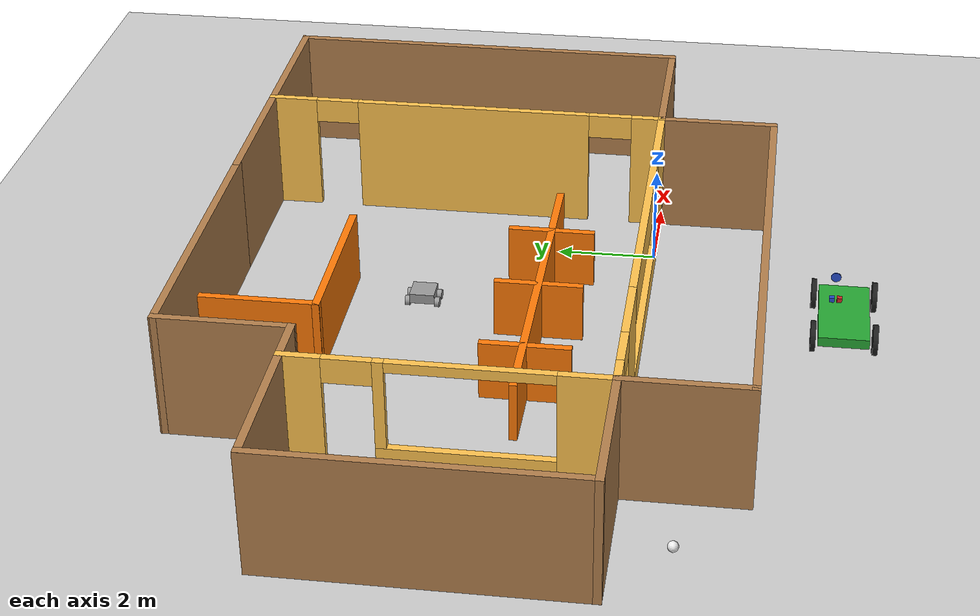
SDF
<sdf version="1.6">
 <world name="default">
  <plugin name="hello" filename="libhello.so"/>
  <model name="ground_plane">
   <static>1</static>
   <link name="link">
    <collision name="collision">
     <geometry><plane><normal>0 0 1</normal><size>100 100</size></plane></geometry>
     <surface><friction><ode><mu>100</mu><mu2>50</mu2></ode></friction></surface>
    </collision>
    <visual name="visual">
     <cast_shadows>0</cast_shadows>
     <geometry><plane><normal>0 0 1</normal><size>100 100</size></plane></geometry>
     <material>
      <script><uri>file://media/materials/scripts/gazebo.material</uri><name>Gazebo/Grey</name></script>
     </material>
    </visual>
   </link>
  </model>
  <gravity>0 0 -9.8</gravity>
  <magnetic_field>6e-06 2.3e-05 -4.2e-05</magnetic_field>
  <atmosphere type="adiabatic"/>
  <physics name="default_physics" default="0" type="ode">
   <max_step_size>0.001</max_step_size>
   <real_time_factor>1</real_time_factor>
   <real_time_update_rate>1000</real_time_update_rate>
  </physics>
  <scene><ambient>0.4 0.4 0.4 1</ambient><background>0.7 0.7 0.7 1</background><shadows>1</shadows></scene>
  <spherical_coordinates>
   <surface_model>EARTH_WGS84</surface_model>
   <latitude_deg>0</latitude_deg>
   <longitude_deg>0</longitude_deg>
   <elevation>0</elevation>
   <heading_deg>0</heading_deg>
  </spherical_coordinates>
  <model name="office_room">
   <pose>-3.26121 3.03746 0 0 -0 0</pose>
   <link name="Wall_1">
    <collision name="Wall_1_Collision">
     <geometry><box><size>6 0.15 2.5</size></box></geometry>
     <pose>0 0 1.25 0 -0 0</pose>
    </collision>
    <visual name="Wall_1_Visual">
     <pose>0 0 1.25 0 -0 0</pose>
     <geometry><box><size>6 0.15 2.5</size></box></geometry>
     <material>
      <script><uri>file://media/materials/scripts/gazebo.material</uri><name>Gazebo/Wood</name></script>
      <ambient>0.435294 0.796078 0.67451 1</ambient>
     </material>
     <meta><layer>0</layer></meta>
    </visual>
    <pose>-7.89989 -0.075231 0 0 0 -1.57083</pose>
   </link>
   <link name="Wall_18">
    <collision name="Wall_18_Collision">
     <geometry><box><size>6 0.15 2.5</size></box></geometry>
     <pose>0 0 1.25 0 -0 0</pose>
    </collision>
    <visual name="Wall_18_Visual">
     <pose>0 0 1.25 0 -0 0</pose>
     <geometry><box><size>6 0.15 2.5</size></box></geometry>
     <material>
      <script><uri>file://media/materials/scripts/gazebo.material</uri><name>Gazebo/Wood</name></script>
      <ambient>0.435294 0.796078 0.67451 1</ambient>
     </material>
     <meta><layer>0</layer></meta>
    </visual>
    <pose>-1.225 5.35 0 0 -0 3.14159</pose>
   </link>
   <link name="Wall_2">
    <collision name="Wall_2_Collision">
     <geometry><box><size>3 0.15 2.5</size></box></geometry>
     <pose>0 0 1.25 0 -0 0</pose>
    </collision>
    <visual name="Wall_2_Visual">
     <pose>0 0 1.25 0 -0 0</pose>
     <geometry><box><size>3 0.15 2.5</size></box></geometry>
     <material>
      <script><uri>file://media/materials/scripts/gazebo.material</uri><name>Gazebo/Wood</name></script>
      <ambient>0.435294 0.796078 0.67451 1</ambient>
     </material>
     <meta><layer>0</layer></meta>
    </visual>
    <pose>-6.475 -3 0 0 -0 0</pose>
   </link>
   <link name="Wall_23">
    <collision name="Wall_23_Collision">
     <geometry><box><size>3.9 0.15 2.5</size></box></geometry>
     <pose>0 0 1.25 0 -0 0</pose>
    </collision>
    <visual name="Wall_23_Visual">
     <pose>0 0 1.25 0 -0 0</pose>
     <geometry><box><size>3.9 0.15 2.5</size></box></geometry>
     <material>
      <script><uri>file://media/materials/scripts/gazebo.material</uri><name>Gazebo/Wood</name></script>
      <ambient>0.435294 0.796078 0.67451 1</ambient>
     </material>
     <meta><layer>0</layer></meta>
    </visual>
    <pose>-6.02478 2.84954 0 0 -0 0</pose>
   </link>
   <link name="Wall_24">
    <collision name="Wall_24_Collision">
     <geometry><box><size>2.65046 0.15 2.5</size></box></geometry>
     <pose>0 0 1.25 0 -0 0</pose>
    </collision>
    <visual name="Wall_24_Visual">
     <pose>0 0 1.25 0 -0 0</pose>
     <geometry><box><size>2.65046 0.15 2.5</size></box></geometry>
     <material>
      <script><uri>file://media/materials/scripts/gazebo.material</uri><name>Gazebo/Wood</name></script>
      <ambient>0.435294 0.796078 0.67451 1</ambient>
     </material>
     <meta><layer>0</layer></meta>
    </visual>
    <pose>-4.14989 4.09977 0 0 -0 1.57088</pose>
   </link>
   <link name="Wall_26">
    <pose>-5.05 -0.075003 0 0 -0 1.5708</pose>
    <visual name="Wall_26_Visual_0">
     <pose>-2.45423 0 1.25 0 -0 0</pose>
     <geometry><box><size>1.09154 0.15 2.5</size></box></geometry>
     <material>
      <script><uri>file://media/materials/scripts/gazebo.material</uri><name>Gazebo/Grey</name></script>
      <ambient>1 0.764706 0.305882 1</ambient>
     </material>
     <meta><layer>0</layer></meta>
    </visual>
    <collision name="Wall_26_Collision_0">
     <geometry><box><size>1.09154 0.15 2.5</size></box></geometry>
     <pose>-2.45423 0 1.25 0 -0 0</pose>
    </collision>
    <visual name="Wall_26_Visual_1">
     <pose>2.59632 0 1.25 0 -0 0</pose>
     <geometry><box><size>0.807355 0.15 2.5</size></box></geometry>
     <material>
      <script><uri>file://media/materials/scripts/gazebo.material</uri><name>Gazebo/Grey</name></script>
      <ambient>1 0.764706 0.305882 1</ambient>
     </material>
     <meta><layer>0</layer></meta>
    </visual>
    <collision name="Wall_26_Collision_1">
     <geometry><box><size>0.807355 0.15 2.5</size></box></geometry>
     <pose>2.59632 0 1.25 0 -0 0</pose>
    </collision>
    <visual name="Wall_26_Visual_2">
     <pose>-0.307906 0 0.35 0 -0 0</pose>
     <geometry><box><size>3.2011 0.15 0.7</size></box></geometry>
     <material>
      <script><uri>file://media/materials/scripts/gazebo.material</uri><name>Gazebo/Grey</name></script>
      <ambient>1 0.764706 0.305882 1</ambient>
     </material>
     <meta><layer>0</layer></meta>
    </visual>
    <collision name="Wall_26_Collision_2">
     <geometry><box><size>3.2011 0.15 0.7</size></box></geometry>
     <pose>-0.307906 0 0.35 0 -0 0</pose>
    </collision>
    <visual name="Wall_26_Visual_3">
     <pose>1.19209 0 1.6 0 -0 0</pose>
     <geometry><box><size>0.201101 0.15 1.8</size></box></geometry>
     <material>
      <script><uri>file://media/materials/scripts/gazebo.material</uri><name>Gazebo/Grey</name></script>
      <ambient>1 0.764706 0.305882 1</ambient>
     </material>
     <meta><layer>0</layer></meta>
    </visual>
    <collision name="Wall_26_Collision_3">
     <geometry><box><size>0.201101 0.15 1.8</size></box></geometry>
     <pose>1.19209 0 1.6 0 -0 0</pose>
    </collision>
    <visual name="Wall_26_Visual_4">
     <pose>1.74264 0 2.25 0 -0 0</pose>
     <geometry><box><size>0.9 0.15 0.5</size></box></geometry>
     <material>
      <script><uri>file://media/materials/scripts/gazebo.material</uri><name>Gazebo/Grey</name></script>
      <ambient>1 0.764706 0.305882 1</ambient>
     </material>
     <meta><layer>0</layer></meta>
    </visual>
    <collision name="Wall_26_Collision_4">
     <geometry><box><size>0.9 0.15 0.5</size></box></geometry>
     <pose>1.74264 0 2.25 0 -0 0</pose>
    </collision>
    <visual name="Wall_26_Visual_5">
     <pose>-0.408456 0 2.4 0 -0 0</pose>
     <geometry><box><size>3 0.15 0.2</size></box></geometry>
     <material>
      <script><uri>file://media/materials/scripts/gazebo.material</uri><name>Gazebo/Grey</name></script>
      <ambient>1 0.764706 0.305882 1</ambient>
     </material>
     <meta><layer>0</layer></meta>
    </visual>
    <collision name="Wall_26_Collision_5">
     <geometry><box><size>3 0.15 0.2</size></box></geometry>
     <pose>-0.408456 0 2.4 0 -0 0</pose>
    </collision>
   </link>
   <link name="Wall_28">
    <pose>-0.124999 -3 0 0 -0 0</pose>
    <visual name="Wall_28_Visual_0">
     <pose>-4.6854 0 1.25 0 -0 0</pose>
     <geometry><box><size>0.629202 0.15 2.5</size></box></geometry>
     <material>
      <script><uri>file://media/materials/scripts/gazebo.material</uri><name>Gazebo/Grey</name></script>
      <ambient>1 0.764706 0.305882 1</ambient>
     </material>
     <meta><layer>0</layer></meta>
    </visual>
    <collision name="Wall_28_Collision_0">
     <geometry><box><size>0.629202 0.15 2.5</size></box></geometry>
     <pose>-4.6854 0 1.25 0 -0 0</pose>
    </collision>
    <visual name="Wall_28_Visual_1">
     <pose>-2.70707 0 1.25 0 -0 0</pose>
     <geometry><box><size>1.52746 0.15 2.5</size></box></geometry>
     <material>
      <script><uri>file://media/materials/scripts/gazebo.material</uri><name>Gazebo/Grey</name></script>
      <ambient>1 0.764706 0.305882 1</ambient>
     </material>
     <meta><layer>0</layer></meta>
    </visual>
    <collision name="Wall_28_Collision_1">
     <geometry><box><size>1.52746 0.15 2.5</size></box></geometry>
     <pose>-2.70707 0 1.25 0 -0 0</pose>
    </collision>
    <visual name="Wall_28_Visual_2">
     <pose>1.52833 0 0.25 0 -0 0</pose>
     <geometry><box><size>6.94334 0.15 0.5</size></box></geometry>
     <material>
      <script><uri>file://media/materials/scripts/gazebo.material</uri><name>Gazebo/Grey</name></script>
      <ambient>1 0.764706 0.305882 1</ambient>
     </material>
     <meta><layer>0</layer></meta>
    </visual>
    <collision name="Wall_28_Collision_2">
     <geometry><box><size>6.94334 0.15 0.5</size></box></geometry>
     <pose>1.52833 0 0.25 0 -0 0</pose>
    </collision>
    <visual name="Wall_28_Visual_3">
     <pose>4.02833 0 1.5 0 -0 0</pose>
     <geometry><box><size>1.94334 0.15 2</size></box></geometry>
     <material>
      <script><uri>file://media/materials/scripts/gazebo.material</uri><name>Gazebo/Grey</name></script>
      <ambient>1 0.764706 0.305882 1</ambient>
     </material>
     <meta><layer>0</layer></meta>
    </visual>
    <collision name="Wall_28_Collision_3">
     <geometry><box><size>1.94334 0.15 2</size></box></geometry>
     <pose>4.02833 0 1.5 0 -0 0</pose>
    </collision>
    <visual name="Wall_28_Visual_4">
     <pose>0.556659 0 2.1 0 -0 0</pose>
     <geometry><box><size>5 0.15 0.8</size></box></geometry>
     <material>
      <script><uri>file://media/materials/scripts/gazebo.material</uri><name>Gazebo/Grey</name></script>
      <ambient>1 0.764706 0.305882 1</ambient>
     </material>
     <meta><layer>0</layer></meta>
    </visual>
    <collision name="Wall_28_Collision_4">
     <geometry><box><size>5 0.15 0.8</size></box></geometry>
     <pose>0.556659 0 2.1 0 -0 0</pose>
    </collision>
    <visual name="Wall_28_Visual_5">
     <pose>-3.9208 0 2.25 0 -0 0</pose>
     <geometry><box><size>0.9 0.15 0.5</size></box></geometry>
     <material>
      <script><uri>file://media/materials/scripts/gazebo.material</uri><name>Gazebo/Grey</name></script>
      <ambient>1 0.764706 0.305882 1</ambient>
     </material>
     <meta><layer>0</layer></meta>
    </visual>
    <collision name="Wall_28_Collision_5">
     <geometry><box><size>0.9 0.15 0.5</size></box></geometry>
     <pose>-3.9208 0 2.25 0 -0 0</pose>
    </collision>
   </link>
   <link name="Wall_3">
    <collision name="Wall_3_Collision">
     <geometry><box><size>2.5 0.15 2.5</size></box></geometry>
     <pose>0 0 1.25 0 -0 0</pose>
    </collision>
    <visual name="Wall_3_Visual">
     <pose>0 0 1.25 0 -0 0</pose>
     <geometry><box><size>2.5 0.15 2.5</size></box></geometry>
     <material>
      <script><uri>file://media/materials/scripts/gazebo.material</uri><name>Gazebo/Wood</name></script>
      <ambient>0.435294 0.796078 0.67451 1</ambient>
     </material>
     <meta><layer>0</layer></meta>
    </visual>
    <pose>-5.05 -4.175 0 0 0 -1.5708</pose>
   </link>
   <link name="Wall_30">
    <collision name="Wall_30_Collision">
     <geometry><box><size>7.25 0.15 1.2</size></box></geometry>
     <pose>0 0 0.6 0 -0 0</pose>
    </collision>
    <visual name="Wall_30_Visual">
     <pose>0 0 0.6 0 -0 0</pose>
     <geometry><box><size>7.25 0.15 1.2</size></box></geometry>
     <material>
      <script><uri>file://media/materials/scripts/gazebo.material</uri><name>Gazebo/Grey</name></script>
      <ambient>0.996078 0.47451 0.0196078 1</ambient>
     </material>
     <meta><layer>0</layer></meta>
    </visual>
    <pose>0.011215 -1.00846 0 0 -0 0</pose>
   </link>
   <link name="Wall_32">
    <collision name="Wall_32_Collision">
     <geometry><box><size>1.75 0.15 1.2</size></box></geometry>
     <pose>0 0 0.6 0 -0 0</pose>
    </collision>
    <visual name="Wall_32_Visual">
     <pose>0 0 0.6 0 -0 0</pose>
     <geometry><box><size>1.75 0.15 1.2</size></box></geometry>
     <material>
      <script><uri>file://media/materials/scripts/gazebo.material</uri><name>Gazebo/Grey</name></script>
      <ambient>0.996078 0.47451 0.0196078 1</ambient>
     </material>
     <meta><layer>0</layer></meta>
    </visual>
    <pose>-2.24478 -1.04746 0 0 -0 1.5708</pose>
   </link>
   <link name="Wall_34">
    <collision name="Wall_34_Collision">
     <geometry><box><size>1.75 0.15 1.2</size></box></geometry>
     <pose>0 0 0.6 0 -0 0</pose>
    </collision>
    <visual name="Wall_34_Visual">
     <pose>0 0 0.6 0 -0 0</pose>
     <geometry><box><size>1.75 0.15 1.2</size></box></geometry>
     <material>
      <script><uri>file://media/materials/scripts/gazebo.material</uri><name>Gazebo/Grey</name></script>
      <ambient>0.996078 0.47451 0.0196078 1</ambient>
     </material>
     <meta><layer>0</layer></meta>
    </visual>
    <pose>-0.022785 -1.01246 0 0 -0 1.5708</pose>
   </link>
   <link name="Wall_36">
    <collision name="Wall_36_Collision">
     <geometry><box><size>1.75 0.15 1.2</size></box></geometry>
     <pose>0 0 0.6 0 -0 0</pose>
    </collision>
    <visual name="Wall_36_Visual">
     <pose>0 0 0.6 0 -0 0</pose>
     <geometry><box><size>1.75 0.15 1.2</size></box></geometry>
     <material>
      <script><uri>file://media/materials/scripts/gazebo.material</uri><name>Gazebo/Grey</name></script>
      <ambient>0.996078 0.47451 0.0196078 1</ambient>
     </material>
     <meta><layer>0</layer></meta>
    </visual>
    <pose>2.07621 -1.01246 0 0 -0 1.5708</pose>
   </link>
   <link name="Wall_4">
    <collision name="Wall_4_Collision">
     <geometry><box><size>10 0.15 2.5</size></box></geometry>
     <pose>0 0 1.25 0 -0 0</pose>
    </collision>
    <visual name="Wall_4_Visual">
     <pose>0 0 1.25 0 -0 0</pose>
     <geometry><box><size>10 0.15 2.5</size></box></geometry>
     <material>
      <script><uri>file://media/materials/scripts/gazebo.material</uri><name>Gazebo/Wood</name></script>
      <ambient>0.435294 0.796078 0.67451 1</ambient>
     </material>
     <meta><layer>0</layer></meta>
    </visual>
    <pose>-0.124999 -5.35 0 0 -0 0</pose>
   </link>
   <link name="Wall_43">
    <pose>4.8 1.175 0 0 -0 1.5708</pose>
    <visual name="Wall_43_Visual_0">
     <pose>-3.89641 0 1.25 0 -0 0</pose>
     <geometry><box><size>0.707182 0.15 2.5</size></box></geometry>
     <material>
      <script><uri>file://media/materials/scripts/gazebo.material</uri><name>Gazebo/Grey</name></script>
      <ambient>1 0.764706 0.305882 1</ambient>
     </material>
     <meta><layer>0</layer></meta>
    </visual>
    <collision name="Wall_43_Collision_0">
     <geometry><box><size>0.707182 0.15 2.5</size></box></geometry>
     <pose>-3.89641 0 1.25 0 -0 0</pose>
    </collision>
    <visual name="Wall_43_Visual_1">
     <pose>-0.163233 0 1.25 0 -0 0</pose>
     <geometry><box><size>4.95917 0.15 2.5</size></box></geometry>
     <material>
      <script><uri>file://media/materials/scripts/gazebo.material</uri><name>Gazebo/Grey</name></script>
      <ambient>1 0.764706 0.305882 1</ambient>
     </material>
     <meta><layer>0</layer></meta>
    </visual>
    <collision name="Wall_43_Collision_1">
     <geometry><box><size>4.95917 0.15 2.5</size></box></geometry>
     <pose>-0.163233 0 1.25 0 -0 0</pose>
    </collision>
    <visual name="Wall_43_Visual_2">
     <pose>3.73318 0 1.25 0 -0 0</pose>
     <geometry><box><size>1.03365 0.15 2.5</size></box></geometry>
     <material>
      <script><uri>file://media/materials/scripts/gazebo.material</uri><name>Gazebo/Grey</name></script>
      <ambient>1 0.764706 0.305882 1</ambient>
     </material>
     <meta><layer>0</layer></meta>
    </visual>
    <collision name="Wall_43_Collision_2">
     <geometry><box><size>1.03365 0.15 2.5</size></box></geometry>
     <pose>3.73318 0 1.25 0 -0 0</pose>
    </collision>
    <visual name="Wall_43_Visual_3">
     <pose>-3.09282 0 2.25 0 -0 0</pose>
     <geometry><box><size>0.9 0.15 0.5</size></box></geometry>
     <material>
      <script><uri>file://media/materials/scripts/gazebo.material</uri><name>Gazebo/Grey</name></script>
      <ambient>1 0.764706 0.305882 1</ambient>
     </material>
     <meta><layer>0</layer></meta>
    </visual>
    <collision name="Wall_43_Collision_3">
     <geometry><box><size>0.9 0.15 0.5</size></box></geometry>
     <pose>-3.09282 0 2.25 0 -0 0</pose>
    </collision>
    <visual name="Wall_43_Visual_4">
     <pose>2.76635 0 2.25 0 -0 0</pose>
     <geometry><box><size>0.9 0.15 0.5</size></box></geometry>
     <material>
      <script><uri>file://media/materials/scripts/gazebo.material</uri><name>Gazebo/Grey</name></script>
      <ambient>1 0.764706 0.305882 1</ambient>
     </material>
     <meta><layer>0</layer></meta>
    </visual>
    <collision name="Wall_43_Collision_4">
     <geometry><box><size>0.9 0.15 0.5</size></box></geometry>
     <pose>2.76635 0 2.25 0 -0 0</pose>
    </collision>
   </link>
   <link name="Wall_46">
    <collision name="Wall_46_Collision">
     <geometry><box><size>8.5 0.15 2.5</size></box></geometry>
     <pose>0 0 1.25 0 -0 0</pose>
    </collision>
    <visual name="Wall_46_Visual">
     <pose>0 0 1.25 0 -0 0</pose>
     <geometry><box><size>8.5 0.15 2.5</size></box></geometry>
     <material>
      <script><uri>file://media/materials/scripts/gazebo.material</uri><name>Gazebo/Wood</name></script>
      <ambient>0.435294 0.796078 0.67451 1</ambient>
     </material>
     <meta><layer>0</layer></meta>
    </visual>
    <pose>7.9 1.175 0 0 -0 1.5708</pose>
   </link>
   <link name="Wall_47">
    <collision name="Wall_47_Collision">
     <geometry><box><size>6.35 0.15 2.5</size></box></geometry>
     <pose>0 0 1.25 0 -0 0</pose>
    </collision>
    <visual name="Wall_47_Visual">
     <pose>0 0 1.25 0 -0 0</pose>
     <geometry><box><size>6.35 0.15 2.5</size></box></geometry>
     <material>
      <script><uri>file://media/materials/scripts/gazebo.material</uri><name>Gazebo/Wood</name></script>
      <ambient>0.435294 0.796078 0.67451 1</ambient>
     </material>
     <meta><layer>0</layer></meta>
    </visual>
    <pose>4.8 5.35 0 0 -0 3.14159</pose>
   </link>
   <link name="Wall_5">
    <collision name="Wall_5_Collision">
     <geometry><box><size>2.5 0.15 2.5</size></box></geometry>
     <pose>0 0 1.25 0 -0 0</pose>
    </collision>
    <visual name="Wall_5_Visual">
     <pose>0 0 1.25 0 -0 0</pose>
     <geometry><box><size>2.5 0.15 2.5</size></box></geometry>
     <material>
      <script><uri>file://media/materials/scripts/gazebo.material</uri><name>Gazebo/Wood</name></script>
      <ambient>0.435294 0.796078 0.67451 1</ambient>
     </material>
     <meta><layer>0</layer></meta>
    </visual>
    <pose>4.8 -4.175 0 0 -0 1.5708</pose>
   </link>
   <link name="Wall_50">
    <collision name="Wall_50_Collision">
     <geometry><box><size>2.5 0.15 1.5</size></box></geometry>
     <pose>0 0 0.75 0 -0 0</pose>
    </collision>
    <visual name="Wall_50_Visual">
     <pose>0 0 0.75 0 -0 0</pose>
     <geometry><box><size>2.5 0.15 1.5</size></box></geometry>
     <material>
      <script><uri>file://media/materials/scripts/gazebo.material</uri><name>Gazebo/Grey</name></script>
      <ambient>0.996078 0.47451 0.0196078 1</ambient>
     </material>
     <meta><layer>0</layer></meta>
    </visual>
    <pose>-1.77178 4.16554 0 0 0 -1.5708</pose>
   </link>
   <link name="Wall_52">
    <collision name="Wall_52_Collision">
     <geometry><box><size>3.5 0.15 1.5</size></box></geometry>
     <pose>0 0 0.75 0 -0 0</pose>
    </collision>
    <visual name="Wall_52_Visual">
     <pose>0 0 0.75 0 -0 0</pose>
     <geometry><box><size>3.5 0.15 1.5</size></box></geometry>
     <material>
      <script><uri>file://media/materials/scripts/gazebo.material</uri><name>Gazebo/Grey</name></script>
      <ambient>0.996078 0.47451 0.0196078 1</ambient>
     </material>
     <meta><layer>0</layer></meta>
    </visual>
    <pose>-0.096785 2.99054 0 0 -0 0</pose>
   </link>
   <link name="Wall_6">
    <collision name="Wall_6_Collision">
     <geometry><box><size>3.25 0.15 2.5</size></box></geometry>
     <pose>0 0 1.25 0 -0 0</pose>
    </collision>
    <visual name="Wall_6_Visual">
     <pose>0 0 1.25 0 -0 0</pose>
     <geometry><box><size>3.25 0.15 2.5</size></box></geometry>
     <material>
      <script><uri>file://media/materials/scripts/gazebo.material</uri><name>Gazebo/Wood</name></script>
      <ambient>0.435294 0.796078 0.67451 1</ambient>
     </material>
     <meta><layer>0</layer></meta>
    </visual>
    <pose>6.35 -3 0 0 -0 0</pose>
   </link>
   <static>1</static>
  </model>
  <light name="user_directional_light_0" type="directional">
   <pose>-22.8769 3.81843 1 0 -0 0</pose>
   <diffuse>0.5 0.5 0.5 1</diffuse>
   <specular>0.1 0.1 0.1 1</specular>
   <direction>0.1 0.1 -0.9</direction>
   <attenuation>
    <range>20</range>
    <constant>0.5</constant>
    <linear>0.01</linear>
    <quadratic>0.001</quadratic>
   </attenuation>
  </light>
  <model name="4wheel_ugv">
   <link name="link_0">
    <pose>0 0 0.08 0 -0 0</pose>
    <inertial>
     <mass>1</mass>
     <inertia>
      <ixx>0.166667</ixx>
      <ixy>0</ixy>
      <ixz>0</ixz>
      <iyy>0.166667</iyy>
      <iyz>0</iyz>
      <izz>0.166667</izz>
     </inertia>
    </inertial>
    <visual name="visual">
     <geometry><box><size>0.5 0.5 0.2</size></box></geometry>
     <material>
      <lighting>1</lighting>
      <script><uri>file://media/materials/scripts/gazebo.material</uri><name>Gazebo/Grey</name></script>
      <shader type="pixel"><normal_map>__default__</normal_map></shader>
      <ambient>0.3 0.3 0.3 1</ambient>
      <diffuse>0.7 0.7 0.7 1</diffuse>
      <specular>0.01 0.01 0.01 1</specular>
      <emissive>0 0 0 1</emissive>
     </material>
    </visual>
    <collision name="collision">
     <geometry><box><size>0.5 0.5 0.2</size></box></geometry>
     <surface>
      <friction>
       <ode><mu>1</mu><mu2>1</mu2><fdir1>0 0 0</fdir1><slip1>0</slip1><slip2>0</slip2></ode>
       <torsional>
        <coefficient>1</coefficient>
        <patch_radius>0</patch_radius>
        <surface_radius>0</surface_radius>
        <use_patch_radius>1</use_patch_radius>
        <ode><slip>0</slip></ode>
       </torsional>
      </friction>
      <bounce><restitution_coefficient>0</restitution_coefficient><threshold>1e+06</threshold></bounce>
      <contact>
       <collide_without_contact>0</collide_without_contact>
       <collide_without_contact_bitmask>1</collide_without_contact_bitmask>
       <collide_bitmask>1</collide_bitmask>
       <ode>
        <soft_cfm>0</soft_cfm>
        <soft_erp>0.2</soft_erp>
        <kp>1e+13</kp>
        <kd>1</kd>
        <max_vel>0.01</max_vel>
        <min_depth>0</min_depth>
       </ode>
       <bullet>
        <split_impulse>1</split_impulse>
        <split_impulse_penetration_threshold>-0.01</split_impulse_penetration_threshold>
        <soft_cfm>0</soft_cfm>
        <soft_erp>0.2</soft_erp>
        <kp>1e+13</kp>
        <kd>1</kd>
       </bullet>
      </contact>
     </surface>
    </collision>
   </link>
   <link name="link_1">
    <pose>0.15 0.3 -0.02 1.5707 -0 0</pose>
    <inertial>
     <mass>1</mass>
     <inertia><ixx>0.145833</ixx><ixy>0</ixy><ixz>0</ixz><iyy>0.145833</iyy><iyz>0</iyz><izz>0.125</izz></inertia>
    </inertial>
    <visual name="visual">
     <geometry><cylinder><radius>0.1</radius><length>0.1</length></cylinder></geometry>
     <material>
      <lighting>1</lighting>
      <script><uri>file://media/materials/scripts/gazebo.material</uri><name>Gazebo/Grey</name></script>
      <shader type="pixel"><normal_map>__default__</normal_map></shader>
      <ambient>0.3 0.3 0.3 1</ambient>
      <diffuse>0.7 0.7 0.7 1</diffuse>
      <specular>0.01 0.01 0.01 1</specular>
      <emissive>0 0 0 1</emissive>
     </material>
    </visual>
    <collision name="collision">
     <geometry><cylinder><radius>0.1</radius><length>0.1</length></cylinder></geometry>
     <surface>
      <friction>
       <ode><mu>1</mu><mu2>1</mu2><fdir1>0 0 0</fdir1><slip1>0</slip1><slip2>0</slip2></ode>
       <torsional>
        <coefficient>1</coefficient>
        <patch_radius>0</patch_radius>
        <surface_radius>0</surface_radius>
        <use_patch_radius>1</use_patch_radius>
        <ode><slip>0</slip></ode>
       </torsional>
      </friction>
      <bounce><restitution_coefficient>0</restitution_coefficient><threshold>1e+06</threshold></bounce>
      <contact>
       <collide_without_contact>0</collide_without_contact>
       <collide_without_contact_bitmask>1</collide_without_contact_bitmask>
       <collide_bitmask>1</collide_bitmask>
       <ode>
        <soft_cfm>0</soft_cfm>
        <soft_erp>0.2</soft_erp>
        <kp>1e+13</kp>
        <kd>1</kd>
        <max_vel>0.01</max_vel>
        <min_depth>0</min_depth>
       </ode>
       <bullet>
        <split_impulse>1</split_impulse>
        <split_impulse_penetration_threshold>-0.01</split_impulse_penetration_threshold>
        <soft_cfm>0</soft_cfm>
        <soft_erp>0.2</soft_erp>
        <kp>1e+13</kp>
        <kd>1</kd>
       </bullet>
      </contact>
     </surface>
    </collision>
   </link>
   <link name="link_1_clone">
    <pose>-0.15 -0.3 -0.02 1.5707 -0 0</pose>
    <inertial>
     <mass>1</mass>
     <inertia><ixx>0.145833</ixx><ixy>0</ixy><ixz>0</ixz><iyy>0.145833</iyy><iyz>0</iyz><izz>0.125</izz></inertia>
    </inertial>
    <visual name="visual">
     <geometry><cylinder><radius>0.1</radius><length>0.1</length></cylinder></geometry>
     <material>
      <lighting>1</lighting>
      <script><uri>file://media/materials/scripts/gazebo.material</uri><name>Gazebo/Grey</name></script>
      <shader type="pixel"><normal_map>__default__</normal_map></shader>
      <ambient>0.3 0.3 0.3 1</ambient>
      <diffuse>0.7 0.7 0.7 1</diffuse>
      <specular>0.01 0.01 0.01 1</specular>
      <emissive>0 0 0 1</emissive>
     </material>
    </visual>
    <collision name="collision">
     <geometry><cylinder><radius>0.1</radius><length>0.1</length></cylinder></geometry>
     <surface>
      <friction>
       <ode><mu>1</mu><mu2>1</mu2><fdir1>0 0 0</fdir1><slip1>0</slip1><slip2>0</slip2></ode>
       <torsional>
        <coefficient>1</coefficient>
        <patch_radius>0</patch_radius>
        <surface_radius>0</surface_radius>
        <use_patch_radius>1</use_patch_radius>
        <ode><slip>0</slip></ode>
       </torsional>
      </friction>
      <bounce><restitution_coefficient>0</restitution_coefficient><threshold>1e+06</threshold></bounce>
      <contact>
       <collide_without_contact>0</collide_without_contact>
       <collide_without_contact_bitmask>1</collide_without_contact_bitmask>
       <collide_bitmask>1</collide_bitmask>
       <ode>
        <soft_cfm>0</soft_cfm>
        <soft_erp>0.2</soft_erp>
        <kp>1e+13</kp>
        <kd>1</kd>
        <max_vel>0.01</max_vel>
        <min_depth>0</min_depth>
       </ode>
       <bullet>
        <split_impulse>1</split_impulse>
        <split_impulse_penetration_threshold>-0.01</split_impulse_penetration_threshold>
        <soft_cfm>0</soft_cfm>
        <soft_erp>0.2</soft_erp>
        <kp>1e+13</kp>
        <kd>1</kd>
       </bullet>
      </contact>
     </surface>
    </collision>
   </link>
   <link name="link_1_clone_0">
    <pose>-0.15 0.3 -0.02 1.5707 -0 0</pose>
    <inertial>
     <mass>1</mass>
     <inertia><ixx>0.145833</ixx><ixy>0</ixy><ixz>0</ixz><iyy>0.145833</iyy><iyz>0</iyz><izz>0.125</izz></inertia>
    </inertial>
    <visual name="visual">
     <geometry><cylinder><radius>0.1</radius><length>0.1</length></cylinder></geometry>
     <material>
      <lighting>1</lighting>
      <script><uri>file://media/materials/scripts/gazebo.material</uri><name>Gazebo/Grey</name></script>
      <shader type="pixel"><normal_map>__default__</normal_map></shader>
      <ambient>0.3 0.3 0.3 1</ambient>
      <diffuse>0.7 0.7 0.7 1</diffuse>
      <specular>0.01 0.01 0.01 1</specular>
      <emissive>0 0 0 1</emissive>
     </material>
    </visual>
    <collision name="collision">
     <geometry><cylinder><radius>0.1</radius><length>0.1</length></cylinder></geometry>
     <surface>
      <friction>
       <ode><mu>1</mu><mu2>1</mu2><fdir1>0 0 0</fdir1><slip1>0</slip1><slip2>0</slip2></ode>
       <torsional>
        <coefficient>1</coefficient>
        <patch_radius>0</patch_radius>
        <surface_radius>0</surface_radius>
        <use_patch_radius>1</use_patch_radius>
        <ode><slip>0</slip></ode>
       </torsional>
      </friction>
      <bounce><restitution_coefficient>0</restitution_coefficient><threshold>1e+06</threshold></bounce>
      <contact>
       <collide_without_contact>0</collide_without_contact>
       <collide_without_contact_bitmask>1</collide_without_contact_bitmask>
       <collide_bitmask>1</collide_bitmask>
       <ode>
        <soft_cfm>0</soft_cfm>
        <soft_erp>0.2</soft_erp>
        <kp>1e+13</kp>
        <kd>1</kd>
        <max_vel>0.01</max_vel>
        <min_depth>0</min_depth>
       </ode>
       <bullet>
        <split_impulse>1</split_impulse>
        <split_impulse_penetration_threshold>-0.01</split_impulse_penetration_threshold>
        <soft_cfm>0</soft_cfm>
        <soft_erp>0.2</soft_erp>
        <kp>1e+13</kp>
        <kd>1</kd>
       </bullet>
      </contact>
     </surface>
    </collision>
   </link>
   <link name="link_1_clone_1">
    <pose>0.15 -0.3 -0.02 1.5707 -0 0</pose>
    <inertial>
     <mass>1</mass>
     <inertia><ixx>0.145833</ixx><ixy>0</ixy><ixz>0</ixz><iyy>0.145833</iyy><iyz>0</iyz><izz>0.125</izz></inertia>
    </inertial>
    <visual name="visual">
     <geometry><cylinder><radius>0.1</radius><length>0.1</length></cylinder></geometry>
     <material>
      <lighting>1</lighting>
      <script><uri>file://media/materials/scripts/gazebo.material</uri><name>Gazebo/Grey</name></script>
      <shader type="pixel"><normal_map>__default__</normal_map></shader>
      <ambient>0.3 0.3 0.3 1</ambient>
      <diffuse>0.7 0.7 0.7 1</diffuse>
      <specular>0.01 0.01 0.01 1</specular>
      <emissive>0 0 0 1</emissive>
     </material>
    </visual>
    <collision name="collision">
     <geometry><cylinder><radius>0.1</radius><length>0.1</length></cylinder></geometry>
     <surface>
      <friction>
       <ode><mu>1</mu><mu2>1</mu2><fdir1>0 0 0</fdir1><slip1>0</slip1><slip2>0</slip2></ode>
       <torsional>
        <coefficient>1</coefficient>
        <patch_radius>0</patch_radius>
        <surface_radius>0</surface_radius>
        <use_patch_radius>1</use_patch_radius>
        <ode><slip>0</slip></ode>
       </torsional>
      </friction>
      <bounce><restitution_coefficient>0</restitution_coefficient><threshold>1e+06</threshold></bounce>
      <contact>
       <collide_without_contact>0</collide_without_contact>
       <collide_without_contact_bitmask>1</collide_without_contact_bitmask>
       <collide_bitmask>1</collide_bitmask>
       <ode>
        <soft_cfm>0</soft_cfm>
        <soft_erp>0.2</soft_erp>
        <kp>1e+13</kp>
        <kd>1</kd>
        <max_vel>0.01</max_vel>
        <min_depth>0</min_depth>
       </ode>
       <bullet>
        <split_impulse>1</split_impulse>
        <split_impulse_penetration_threshold>-0.01</split_impulse_penetration_threshold>
        <soft_cfm>0</soft_cfm>
        <soft_erp>0.2</soft_erp>
        <kp>1e+13</kp>
        <kd>1</kd>
       </bullet>
      </contact>
     </surface>
    </collision>
   </link>
   <joint name="link_0_JOINT_0" type="revolute">
    <parent>link_0</parent>
    <child>link_1</child>
    <axis>
     <xyz>0 0 1</xyz>
     <use_parent_model_frame>0</use_parent_model_frame>
     <limit>
      <lower>-1.79769e+308</lower>
      <upper>1.79769e+308</upper>
      <effort>-1</effort>
      <velocity>-1</velocity>
     </limit>
     <dynamics>
      <spring_reference>0</spring_reference>
      <spring_stiffness>0</spring_stiffness>
      <damping>0</damping>
     </dynamics>
    </axis>
    <physics>
     <ode><limit><cfm>0</cfm><erp>0.2</erp></limit><suspension><cfm>0</cfm><erp>0.2</erp></suspension></ode>
    </physics>
   </joint>
   <joint name="link_0_JOINT_2" type="revolute">
    <parent>link_0</parent>
    <child>link_1_clone_1</child>
    <axis>
     <xyz>0 0 1</xyz>
     <use_parent_model_frame>0</use_parent_model_frame>
     <limit>
      <lower>-1.79769e+308</lower>
      <upper>1.79769e+308</upper>
      <effort>-1</effort>
      <velocity>-1</velocity>
     </limit>
     <dynamics>
      <spring_reference>0</spring_reference>
      <spring_stiffness>0</spring_stiffness>
      <damping>0</damping>
      <friction>0</friction>
     </dynamics>
    </axis>
    <physics>
     <ode><limit><cfm>0</cfm><erp>0.2</erp></limit><suspension><cfm>0</cfm><erp>0.2</erp></suspension></ode>
    </physics>
   </joint>
   <joint name="link_0_JOINT_3" type="revolute">
    <parent>link_0</parent>
    <child>link_1_clone_0</child>
    <axis>
     <xyz>0 0 1</xyz>
     <use_parent_model_frame>0</use_parent_model_frame>
     <limit>
      <lower>-1.79769e+308</lower>
      <upper>1.79769e+308</upper>
      <effort>-1</effort>
      <velocity>-1</velocity>
     </limit>
     <dynamics>
      <spring_reference>0</spring_reference>
      <spring_stiffness>0</spring_stiffness>
      <damping>0</damping>
      <friction>0</friction>
     </dynamics>
    </axis>
    <physics>
     <ode><limit><cfm>0</cfm><erp>0.2</erp></limit><suspension><cfm>0</cfm><erp>0.2</erp></suspension></ode>
    </physics>
   </joint>
   <joint name="link_0_JOINT_4" type="revolute">
    <parent>link_0</parent>
    <child>link_1_clone</child>
    <axis>
     <xyz>0 0 1</xyz>
     <use_parent_model_frame>0</use_parent_model_frame>
     <limit>
      <lower>-1.79769e+308</lower>
      <upper>1.79769e+308</upper>
      <effort>-1</effort>
      <velocity>-1</velocity>
     </limit>
     <dynamics>
      <spring_reference>0</spring_reference>
      <spring_stiffness>0</spring_stiffness>
      <damping>0</damping>
      <friction>0</friction>
     </dynamics>
    </axis>
    <physics>
     <ode><limit><cfm>0</cfm><erp>0.2</erp></limit><suspension><cfm>0</cfm><erp>0.2</erp></suspension></ode>
    </physics>
   </joint>
   <static>0</static>
   <pose>-2.32855 4.48631 0.120005 0 -0 0.00121</pose>
  </model>
  <model name="car">
   <link name="chassis">
    <pose>0 0 0.3 0 -0 0</pose>
    <collision name="collision"><geometry><box><size>2 1 0.2</size></box></geometry></collision>
    <visual name="visual">
     <geometry><box><size>2 1 0.2</size></box></geometry>
     <material>
      <script><uri>file://media/materials/scripts/gazebo.material</uri><name>Gazebo/Green</name></script>
     </material>
    </visual>
    <inertial>
     <inertia><ixx>1</ixx><ixy>0</ixy><ixz>0</ixz><iyy>1</iyy><iyz>0</iyz><izz>1</izz></inertia>
     <mass>1</mass>
    </inertial>
   </link>
   <link name="front_left_wheel">
    <pose>0.8 0.6 0.3 -0 1.5707 1.5707</pose>
    <collision name="collision">
     <geometry><cylinder><radius>0.3</radius><length>0.1</length></cylinder></geometry>
    </collision>
    <visual name="visual">
     <geometry><cylinder><radius>0.3</radius><length>0.1</length></cylinder></geometry>
     <material>
      <script><uri>file://media/materials/scripts/gazebo.material</uri><name>Gazebo/Black</name></script>
     </material>
    </visual>
    <inertial>
     <inertia><ixx>1</ixx><ixy>0</ixy><ixz>0</ixz><iyy>1</iyy><iyz>0</iyz><izz>1</izz></inertia>
     <mass>1</mass>
    </inertial>
   </link>
   <link name="front_right_wheel">
    <pose>0.8 -0.6 0.3 -0 1.5707 1.5707</pose>
    <collision name="collision">
     <geometry><cylinder><radius>0.3</radius><length>0.1</length></cylinder></geometry>
    </collision>
    <visual name="visual">
     <geometry><cylinder><radius>0.3</radius><length>0.1</length></cylinder></geometry>
     <material>
      <script><uri>file://media/materials/scripts/gazebo.material</uri><name>Gazebo/Black</name></script>
     </material>
    </visual>
    <inertial>
     <inertia><ixx>1</ixx><ixy>0</ixy><ixz>0</ixz><iyy>1</iyy><iyz>0</iyz><izz>1</izz></inertia>
     <mass>1</mass>
    </inertial>
   </link>
   <link name="back_right_wheel">
    <pose>-0.8 -0.6 0.3 -0 1.5707 1.5707</pose>
    <collision name="collision">
     <geometry><cylinder><radius>0.3</radius><length>0.1</length></cylinder></geometry>
    </collision>
    <visual name="visual">
     <geometry><cylinder><radius>0.3</radius><length>0.1</length></cylinder></geometry>
     <material>
      <script><uri>file://media/materials/scripts/gazebo.material</uri><name>Gazebo/Black</name></script>
     </material>
    </visual>
    <inertial>
     <inertia><ixx>1</ixx><ixy>0</ixy><ixz>0</ixz><iyy>1</iyy><iyz>0</iyz><izz>1</izz></inertia>
     <mass>1</mass>
    </inertial>
   </link>
   <link name="back_left_wheel">
    <pose>-0.8 0.6 0.3 -0 1.5707 1.5707</pose>
    <collision name="collision">
     <geometry><cylinder><radius>0.3</radius><length>0.1</length></cylinder></geometry>
    </collision>
    <visual name="visual">
     <geometry><cylinder><radius>0.3</radius><length>0.1</length></cylinder></geometry>
     <material>
      <script><uri>file://media/materials/scripts/gazebo.material</uri><name>Gazebo/Black</name></script>
     </material>
    </visual>
    <inertial>
     <inertia><ixx>1</ixx><ixy>0</ixy><ixz>0</ixz><iyy>1</iyy><iyz>0</iyz><izz>1</izz></inertia>
     <mass>1</mass>
    </inertial>
   </link>
   <link name="gas_pedal">
    <pose>0.3 0.1 0.5 0 -0 0</pose>
    <collision name="collision"><geometry><box><size>0.1 0.1 0.1</size></box></geometry></collision>
    <visual name="visual">
     <geometry><box><size>0.1 0.1 0.1</size></box></geometry>
     <material>
      <script><uri>file://media/materials/scripts/gazebo.material</uri><name>Gazebo/Red</name></script>
     </material>
    </visual>
    <inertial>
     <inertia><ixx>1</ixx><ixy>0</ixy><ixz>0</ixz><iyy>1</iyy><iyz>0</iyz><izz>1</izz></inertia>
     <mass>1</mass>
    </inertial>
   </link>
   <link name="brake_pedal">
    <pose>0.3 0.25 0.5 0 -0 0</pose>
    <collision name="collision"><geometry><box><size>0.1 0.1 0.1</size></box></geometry></collision>
    <visual name="visual">
     <geometry><box><size>0.1 0.1 0.1</size></box></geometry>
     <material>
      <script><uri>file://media/materials/scripts/gazebo.material</uri><name>Gazebo/Blue</name></script>
     </material>
    </visual>
    <inertial>
     <inertia><ixx>1</ixx><ixy>0</ixy><ixz>0</ixz><iyy>1</iyy><iyz>0</iyz><izz>1</izz></inertia>
     <mass>1</mass>
    </inertial>
   </link>
   <link name="steering_wheel">
    <pose>0.3 0.2 1 0 1.5707 0</pose>
    <collision name="collision">
     <geometry><cylinder><radius>0.1</radius><length>0.01</length></cylinder></geometry>
    </collision>
    <visual name="visual">
     <geometry><cylinder><radius>0.1</radius><length>0.01</length></cylinder></geometry>
     <material>
      <script><uri>file://media/materials/scripts/gazebo.material</uri><name>Gazebo/Blue</name></script>
     </material>
    </visual>
    <inertial>
     <inertia><ixx>1</ixx><ixy>0</ixy><ixz>0</ixz><iyy>1</iyy><iyz>0</iyz><izz>1</izz></inertia>
     <mass>1</mass>
    </inertial>
   </link>
   <joint name="gas_joint" type="prismatic">
    <parent>chassis</parent>
    <child>gas_pedal</child>
    <axis>
     <xyz>1 0 0</xyz>
     <limit><lower>0</lower><upper>0.2</upper></limit>
     <use_parent_model_frame>1</use_parent_model_frame>
     <dynamics><spring_reference>0</spring_reference><spring_stiffness>0</spring_stiffness></dynamics>
    </axis>
   </joint>
   <joint name="brake_joint" type="prismatic">
    <parent>chassis</parent>
    <child>brake_pedal</child>
    <axis>
     <xyz>1 0 0</xyz>
     <limit><lower>0</lower><upper>0.2</upper></limit>
     <use_parent_model_frame>1</use_parent_model_frame>
     <dynamics><spring_reference>0</spring_reference><spring_stiffness>0</spring_stiffness></dynamics>
    </axis>
   </joint>
   <joint name="steering_joint" type="revolute">
    <parent>chassis</parent>
    <child>steering_wheel</child>
    <axis>
     <xyz>1 0 0</xyz>
     <limit><lower>-7.853</lower><upper>7.853</upper></limit>
     <use_parent_model_frame>1</use_parent_model_frame>
     <dynamics><spring_reference>0</spring_reference><spring_stiffness>0</spring_stiffness></dynamics>
    </axis>
   </joint>
   <joint name="front_left_joint" type="revolute2">
    <parent>chassis</parent>
    <child>front_left_wheel</child>
    <axis>
     <xyz>0 0 1</xyz>
     <limit><lower>8.69588e-06</lower><upper>8.69588e-06</upper></limit>
     <use_parent_model_frame>1</use_parent_model_frame>
     <dynamics><spring_reference>0</spring_reference><spring_stiffness>0</spring_stiffness></dynamics>
    </axis>
    <axis2>
     <xyz>0 1 0</xyz>
     <use_parent_model_frame>1</use_parent_model_frame>
     <dynamics><spring_reference>0</spring_reference><spring_stiffness>0</spring_stiffness></dynamics>
    </axis2>
    <physics><ode><limit><cfm>0</cfm><erp>0.9</erp></limit></ode></physics>
   </joint>
   <joint name="front_right_joint" type="revolute2">
    <parent>chassis</parent>
    <child>front_right_wheel</child>
    <axis>
     <xyz>0 0 1</xyz>
     <limit><lower>8.69588e-06</lower><upper>8.69588e-06</upper></limit>
     <use_parent_model_frame>1</use_parent_model_frame>
     <dynamics><spring_reference>0</spring_reference><spring_stiffness>0</spring_stiffness></dynamics>
    </axis>
    <axis2>
     <xyz>0 1 0</xyz>
     <use_parent_model_frame>1</use_parent_model_frame>
     <dynamics><spring_reference>0</spring_reference><spring_stiffness>0</spring_stiffness></dynamics>
    </axis2>
    <physics><ode><limit><cfm>0</cfm><erp>0.9</erp></limit></ode></physics>
   </joint>
   <joint name="back_right_joint" type="revolute2">
    <parent>chassis</parent>
    <child>back_right_wheel</child>
    <axis>
     <xyz>0 0 1</xyz>
     <limit><lower>0</lower><upper>0</upper></limit>
     <use_parent_model_frame>1</use_parent_model_frame>
     <dynamics><spring_reference>0</spring_reference><spring_stiffness>0</spring_stiffness></dynamics>
    </axis>
    <axis2>
     <xyz>0 1 0</xyz>
     <use_parent_model_frame>1</use_parent_model_frame>
     <dynamics><spring_reference>0</spring_reference><spring_stiffness>0</spring_stiffness></dynamics>
    </axis2>
    <physics><ode><limit><cfm>0</cfm><erp>0.9</erp></limit></ode></physics>
   </joint>
   <joint name="back_left_joint" type="revolute2">
    <parent>chassis</parent>
    <child>back_left_wheel</child>
    <axis>
     <xyz>0 0 1</xyz>
     <limit><lower>0</lower><upper>0</upper></limit>
     <use_parent_model_frame>1</use_parent_model_frame>
     <dynamics><spring_reference>0</spring_reference><spring_stiffness>0</spring_stiffness></dynamics>
    </axis>
    <axis2>
     <xyz>0 1 0</xyz>
     <use_parent_model_frame>1</use_parent_model_frame>
     <dynamics><spring_reference>0</spring_reference><spring_stiffness>0</spring_stiffness></dynamics>
    </axis2>
    <physics><ode><limit><cfm>0</cfm><erp>0.9</erp></limit></ode></physics>
   </joint>
   <plugin name="vehicle" filename="libVehiclePlugin.so">
    <front_left>front_left_joint</front_left>
    <front_right>front_right_joint</front_right>
    <back_left>back_left_joint</back_left>
    <back_right>back_right_joint</back_right>
    <gas>gas_joint</gas>
    <brake>brake_joint</brake>
    <steering>steering_joint</steering>
    <front_power>10</front_power>
    <rear_power>10</rear_power>
    <tire_angle_range>0.5</tire_angle_range>
    <max_speed>10</max_speed>
    <aero_load>0.1</aero_load>
   </plugin>
   <pose>-2.28751 -3.92554 -0.002616 -0.000273 0.000907 0.000202</pose>
  </model>
  <model name="table">
   <static>1</static>
   <link name="link">
    <collision name="surface">
     <pose>0 0 1 0 -0 0</pose>
     <geometry><box><size>1.5 0.8 0.03</size></box></geometry>
     <surface><friction><ode><mu>0.6</mu><mu2>0.6</mu2></ode></friction></surface>
    </collision>
    <visual name="visual1">
     <pose>0 0 1 0 -0 0</pose>
     <geometry><box><size>1.5 0.8 0.03</size></box></geometry>
     <material>
      <script><uri>file://media/materials/scripts/gazebo.material</uri><name>Gazebo/Wood</name></script>
     </material>
    </visual>
    <collision name="front_left_leg">
     <pose>0.68 0.38 0.5 0 -0 0</pose>
     <geometry><cylinder><radius>0.02</radius><length>1</length></cylinder></geometry>
    </collision>
    <visual name="front_left_leg">
     <pose>0.68 0.38 0.5 0 -0 0</pose>
     <geometry><cylinder><radius>0.02</radius><length>1</length></cylinder></geometry>
     <material>
      <script><uri>file://media/materials/scripts/gazebo.material</uri><name>Gazebo/Grey</name></script>
     </material>
    </visual>
    <collision name="front_right_leg">
     <pose>0.68 -0.38 0.5 0 -0 0</pose>
     <geometry><cylinder><radius>0.02</radius><length>1</length></cylinder></geometry>
    </collision>
    <visual name="front_right_leg">
     <pose>0.68 -0.38 0.5 0 -0 0</pose>
     <geometry><cylinder><radius>0.02</radius><length>1</length></cylinder></geometry>
     <material>
      <script><uri>file://media/materials/scripts/gazebo.material</uri><name>Gazebo/Grey</name></script>
     </material>
    </visual>
    <collision name="back_right_leg">
     <pose>-0.68 -0.38 0.5 0 -0 0</pose>
     <geometry><cylinder><radius>0.02</radius><length>1</length></cylinder></geometry>
    </collision>
    <visual name="back_right_leg">
     <pose>-0.68 -0.38 0.5 0 -0 0</pose>
     <geometry><cylinder><radius>0.02</radius><length>1</length></cylinder></geometry>
     <material>
      <script><uri>file://media/materials/scripts/gazebo.material</uri><name>Gazebo/Grey</name></script>
     </material>
    </visual>
    <collision name="back_left_leg">
     <pose>-0.68 0.38 0.5 0 -0 0</pose>
     <geometry><cylinder><radius>0.02</radius><length>1</length></cylinder></geometry>
    </collision>
    <visual name="back_left_leg">
     <pose>-0.68 0.38 0.5 0 -0 0</pose>
     <geometry><cylinder><radius>0.02</radius><length>1</length></cylinder></geometry>
     <material>
      <script><uri>file://media/materials/scripts/gazebo.material</uri><name>Gazebo/Grey</name></script>
     </material>
    </visual>
   </link>
   <pose>-9.82031 3.07945 0 0 -0 1.5707</pose>
  </model>
  <model name="my_ball">
   <link name="link_0">
    <inertial>
     <mass>1</mass>
     <inertia><ixx>0.1</ixx><ixy>0</ixy><ixz>0</ixz><iyy>0.1</iyy><iyz>0</iyz><izz>0.1</izz></inertia>
    </inertial>
    <visual name="visual">
     <geometry><sphere><radius>0.1</radius></sphere></geometry>
     <material>
      <lighting>1</lighting>
      <script><uri>file://media/materials/scripts/gazebo.material</uri><name>Gazebo/White</name></script>
      <shader type="pixel"><normal_map>__default__</normal_map></shader>
      <ambient>1 1 1 1</ambient>
      <diffuse>1 1 1 1</diffuse>
      <specular>1 1 1 1</specular>
      <emissive>1 1 1 1</emissive>
     </material>
    </visual>
    <collision name="collision">
     <geometry><sphere><radius>0.1</radius></sphere></geometry>
     <surface>
      <friction>
       <ode><mu>1</mu><mu2>1</mu2><fdir1>0 0 0</fdir1><slip1>0</slip1><slip2>0</slip2></ode>
       <torsional>
        <coefficient>1</coefficient>
        <patch_radius>0</patch_radius>
        <surface_radius>0</surface_radius>
        <use_patch_radius>1</use_patch_radius>
        <ode><slip>0</slip></ode>
       </torsional>
      </friction>
      <bounce><restitution_coefficient>0</restitution_coefficient><threshold>1e+06</threshold></bounce>
      <contact>
       <collide_without_contact>0</collide_without_contact>
       <collide_without_contact_bitmask>1</collide_without_contact_bitmask>
       <collide_bitmask>1</collide_bitmask>
       <ode>
        <soft_cfm>0</soft_cfm>
        <soft_erp>0.2</soft_erp>
        <kp>1e+13</kp>
        <kd>1</kd>
        <max_vel>0.01</max_vel>
        <min_depth>0</min_depth>
       </ode>
       <bullet>
        <split_impulse>1</split_impulse>
        <split_impulse_penetration_threshold>-0.01</split_impulse_penetration_threshold>
        <soft_cfm>0</soft_cfm>
        <soft_erp>0.2</soft_erp>
        <kp>1e+13</kp>
        <kd>1</kd>
       </bullet>
      </contact>
     </surface>
    </collision>
   </link>
   <static>0</static>
   <pose>-9.69761 -1.08918 0.1 0 -0 0</pose>
  </model>
 </world>
</sdf>
